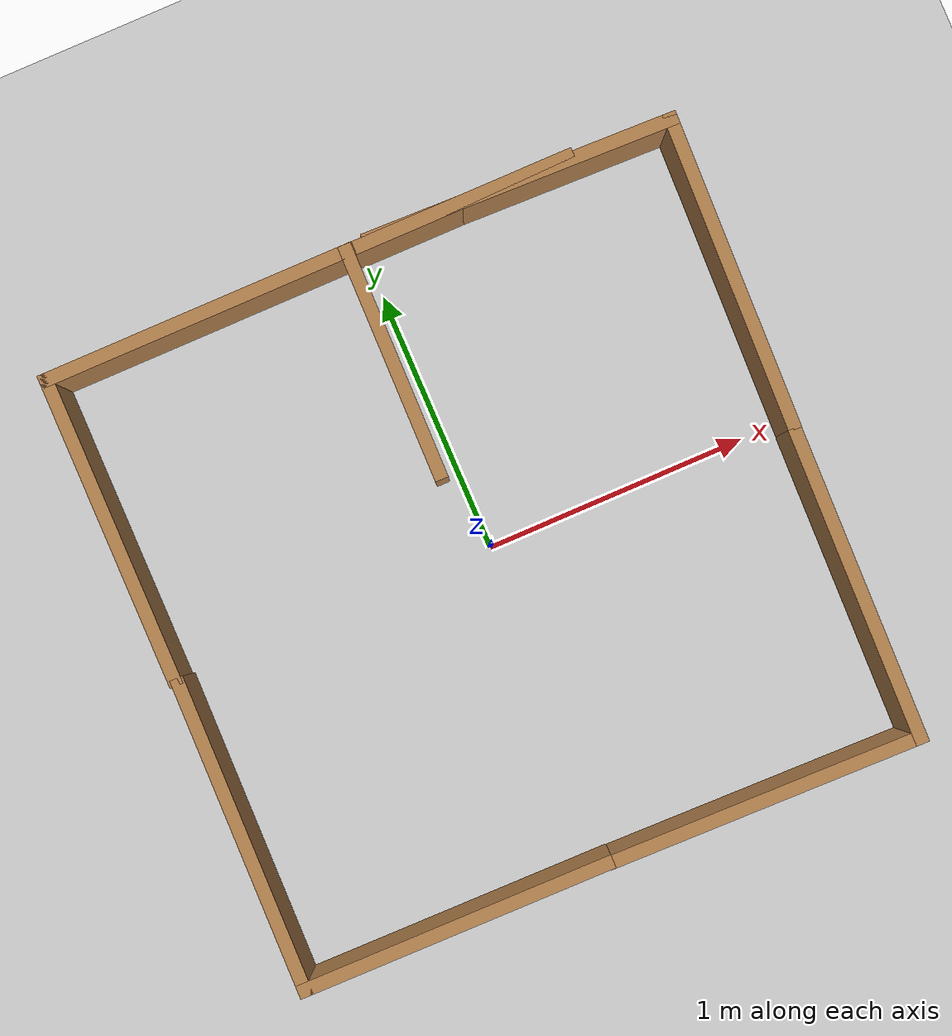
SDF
<sdf version="1.7">
 <world name="default">
  <light name="sun" type="directional">
   <pose>0 0 10 0 -0 0</pose>
   <diffuse>0.8 0.8 0.8 1</diffuse>
   <specular>0.2 0.2 0.2 1</specular>
   <attenuation>
    <range>1000</range>
    <constant>0.9</constant>
    <linear>0.01</linear>
    <quadratic>0.001</quadratic>
   </attenuation>
   <direction>-0.5 0.1 -0.9</direction>
   <spot><inner_angle>0</inner_angle><outer_angle>0</outer_angle><falloff>0</falloff></spot>
  </light>
  <model name="ground_plane">
   <static>1</static>
   <link name="link">
    <collision name="collision">
     <geometry><plane><normal>0 0 1</normal><size>100 100</size></plane></geometry>
     <surface>
      <contact><collide_bitmask>65535</collide_bitmask></contact>
      <friction><ode><mu>100</mu><mu2>50</mu2></ode></friction>
     </surface>
    </collision>
    <visual name="visual">
     <cast_shadows>0</cast_shadows>
     <geometry><plane><normal>0 0 1</normal><size>100 100</size></plane></geometry>
     <material>
      <script><uri>file://media/materials/scripts/gazebo.material</uri><name>Gazebo/Grey</name></script>
     </material>
    </visual>
   </link>
  </model>
  <gravity>0 0 -9.8</gravity>
  <magnetic_field>6e-06 2.3e-05 -4.2e-05</magnetic_field>
  <atmosphere type="adiabatic"/>
  <physics type="ode">
   <max_step_size>0.001</max_step_size>
   <real_time_factor>1</real_time_factor>
   <real_time_update_rate>1000</real_time_update_rate>
  </physics>
  <scene><ambient>0.4 0.4 0.4 1</ambient><background>0.7 0.7 0.7 1</background><shadows>1</shadows></scene>
  <spherical_coordinates>
   <surface_model>EARTH_WGS84</surface_model>
   <latitude_deg>0</latitude_deg>
   <longitude_deg>0</longitude_deg>
   <elevation>0</elevation>
   <heading_deg>0</heading_deg>
  </spherical_coordinates>
  <model name="corner120">
   <pose>-0.266578 2.4409 0 0 -0 0</pose>
   <link name="Wall_29">
    <collision name="Wall_29_Collision">
     <geometry><box><size>1.2087 0.05 0.3</size></box></geometry>
     <pose>0 0 0.15 0 -0 0</pose>
    </collision>
    <visual name="Wall_29_Visual">
     <pose>0 0 0.15 0 -0 0</pose>
     <geometry><box><size>1.2087 0.05 0.3</size></box></geometry>
     <material>
      <script><uri>file://media/materials/scripts/gazebo.material</uri><name>Gazebo/Wood</name></script>
      <ambient>1 1 1 1</ambient>
     </material>
     <meta><layer>0</layer></meta>
    </visual>
    <pose>-0.368152 -1.2825 0 0 -0 0</pose>
   </link>
   <link name="Wall_34">
    <collision name="Wall_34_Collision">
     <geometry><box><size>1.2 0.05 0.3</size></box></geometry>
     <pose>0 0 0.15 0 -0 0</pose>
    </collision>
    <visual name="Wall_34_Visual">
     <pose>0 0 0.15 0 -0 0</pose>
     <geometry><box><size>1.2 0.05 0.3</size></box></geometry>
     <material>
      <script><uri>file://media/materials/scripts/gazebo.material</uri><name>Gazebo/Wood</name></script>
      <ambient>1 1 1 1</ambient>
     </material>
     <meta><layer>0</layer></meta>
    </visual>
    <pose>-0.9475 -1.8575 0 0 -0 -1.5708</pose>
   </link>
   <static>1</static>
  </model>
  <model name="corner120_0">
   <pose>-2.49094 -0.212191 0 0 -0 1.55861</pose>
   <link name="Wall_29">
    <collision name="Wall_29_Collision">
     <geometry><box><size>1.2087 0.05 0.3</size></box></geometry>
     <pose>0 0 0.15 0 -0 0</pose>
    </collision>
    <visual name="Wall_29_Visual">
     <pose>0 0 0.15 0 -0 0</pose>
     <geometry><box><size>1.2087 0.05 0.3</size></box></geometry>
     <material>
      <script><uri>file://media/materials/scripts/gazebo.material</uri><name>Gazebo/Wood</name></script>
      <ambient>1 1 1 1</ambient>
     </material>
     <meta><layer>0</layer></meta>
    </visual>
    <pose>-0.368152 -1.2825 0 0 -0 0</pose>
   </link>
   <link name="Wall_34">
    <collision name="Wall_34_Collision">
     <geometry><box><size>1.2 0.05 0.3</size></box></geometry>
     <pose>0 0 0.15 0 -0 0</pose>
    </collision>
    <visual name="Wall_34_Visual">
     <pose>0 0 0.15 0 -0 0</pose>
     <geometry><box><size>1.2 0.05 0.3</size></box></geometry>
     <material>
      <script><uri>file://media/materials/scripts/gazebo.material</uri><name>Gazebo/Wood</name></script>
      <ambient>1 1 1 1</ambient>
     </material>
     <meta><layer>0</layer></meta>
    </visual>
    <pose>-0.9475 -1.8575 0 0 -0 -1.5708</pose>
   </link>
   <static>1</static>
  </model>
  <model name="corner120_1">
   <pose>0.142975 -2.47863 0 0 -0 3.11871</pose>
   <link name="Wall_29">
    <collision name="Wall_29_Collision">
     <geometry><box><size>1.2087 0.05 0.3</size></box></geometry>
     <pose>0 0 0.15 0 -0 0</pose>
    </collision>
    <visual name="Wall_29_Visual">
     <pose>0 0 0.15 0 -0 0</pose>
     <geometry><box><size>1.2087 0.05 0.3</size></box></geometry>
     <material>
      <script><uri>file://media/materials/scripts/gazebo.material</uri><name>Gazebo/Wood</name></script>
      <ambient>1 1 1 1</ambient>
     </material>
     <meta><layer>0</layer></meta>
    </visual>
    <pose>-0.368152 -1.2825 0 0 -0 0</pose>
   </link>
   <link name="Wall_34">
    <collision name="Wall_34_Collision">
     <geometry><box><size>1.2 0.05 0.3</size></box></geometry>
     <pose>0 0 0.15 0 -0 0</pose>
    </collision>
    <visual name="Wall_34_Visual">
     <pose>0 0 0.15 0 -0 0</pose>
     <geometry><box><size>1.2 0.05 0.3</size></box></geometry>
     <material>
      <script><uri>file://media/materials/scripts/gazebo.material</uri><name>Gazebo/Wood</name></script>
      <ambient>1 1 1 1</ambient>
     </material>
     <meta><layer>0</layer></meta>
    </visual>
    <pose>-0.9475 -1.8575 0 0 -0 -1.5708</pose>
   </link>
   <static>1</static>
  </model>
  <model name="corner120_2">
   <pose>2.43632 0.149114 0 0 0 -1.60007</pose>
   <link name="Wall_29">
    <collision name="Wall_29_Collision">
     <geometry><box><size>1.2087 0.05 0.3</size></box></geometry>
     <pose>0 0 0.15 0 -0 0</pose>
    </collision>
    <visual name="Wall_29_Visual">
     <pose>0 0 0.15 0 -0 0</pose>
     <geometry><box><size>1.2087 0.05 0.3</size></box></geometry>
     <material>
      <script><uri>file://media/materials/scripts/gazebo.material</uri><name>Gazebo/Wood</name></script>
      <ambient>1 1 1 1</ambient>
     </material>
     <meta><layer>0</layer></meta>
    </visual>
    <pose>-0.368152 -1.2825 0 0 -0 0</pose>
   </link>
   <link name="Wall_34">
    <collision name="Wall_34_Collision">
     <geometry><box><size>1.2 0.05 0.3</size></box></geometry>
     <pose>0 0 0.15 0 -0 0</pose>
    </collision>
    <visual name="Wall_34_Visual">
     <pose>0 0 0.15 0 -0 0</pose>
     <geometry><box><size>1.2 0.05 0.3</size></box></geometry>
     <material>
      <script><uri>file://media/materials/scripts/gazebo.material</uri><name>Gazebo/Wood</name></script>
      <ambient>1 1 1 1</ambient>
     </material>
     <meta><layer>0</layer></meta>
    </visual>
    <pose>-0.9475 -1.8575 0 0 -0 -1.5708</pose>
   </link>
   <static>1</static>
  </model>
  <model name="corner90">
   <pose>0.879555 2.5897 0 0 -0 0</pose>
   <link name="Wall_29">
    <collision name="Wall_29_Collision">
     <geometry><box><size>0.9 0.05 0.3</size></box></geometry>
     <pose>0 0 0.15 0 -0 0</pose>
    </collision>
    <visual name="Wall_29_Visual">
     <pose>0 0 0.15 0 -0 0</pose>
     <geometry><box><size>0.9 0.05 0.3</size></box></geometry>
     <material>
      <script><uri>file://media/materials/scripts/gazebo.material</uri><name>Gazebo/Wood</name></script>
      <ambient>1 1 1 1</ambient>
     </material>
     <meta><layer>0</layer></meta>
    </visual>
    <pose>-0.513677 -1.4324 0 0 -0 0</pose>
   </link>
   <link name="Wall_34">
    <collision name="Wall_34_Collision">
     <geometry><box><size>0.9 0.05 0.3</size></box></geometry>
     <pose>0 0 0.15 0 -0 0</pose>
    </collision>
    <visual name="Wall_34_Visual">
     <pose>0 0 0.15 0 -0 0</pose>
     <geometry><box><size>0.9 0.05 0.3</size></box></geometry>
     <material>
      <script><uri>file://media/materials/scripts/gazebo.material</uri><name>Gazebo/Wood</name></script>
      <ambient>1 1 1 1</ambient>
     </material>
     <meta><layer>0</layer></meta>
    </visual>
    <pose>-0.943025 -1.85737 0 0 -0 -1.58103</pose>
   </link>
   <static>1</static>
  </model>
 </world>
</sdf>
